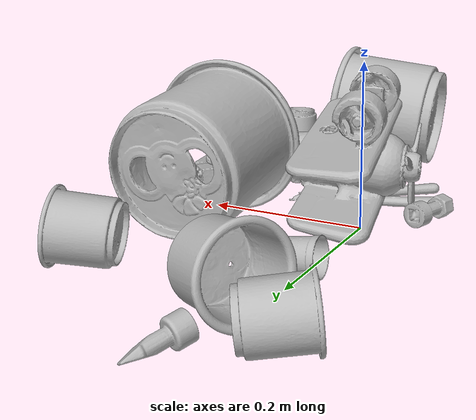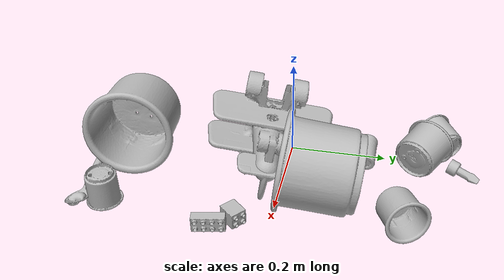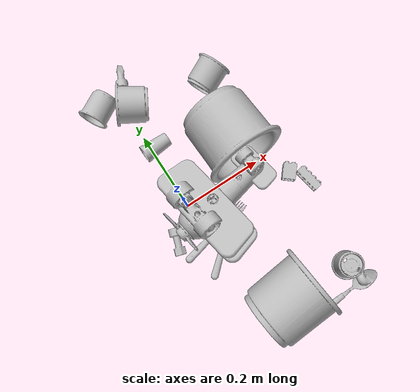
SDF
<sdf version="1.4">
  <world name="default">
    <light name="light1" type="point">
      <pose>0 0 1 0 0 0</pose>
      <diffuse>3 3 3 1</diffuse>
      <specular>3 3 3 1</specular>
    </light>
    <light name="light2" type="point">
      <pose>0 0.5 2 0 0 0</pose>
      <diffuse>1 1 1 1</diffuse>
      <specular>1 1 1 1</specular>
    </light>
    <light name="light3" type="point">
      <pose>0 0.5 2 0 0 0</pose>
      <diffuse>3 3 3 1</diffuse>
      <specular>3 3 3 1</specular>
    </light>
    <scene>
      <ambient>0.7 0.7 0.7</ambient>
    </scene>
    <model name="cup1">
      <link name="link_cup1">
        <collision name="default">
          <geometry>
            <mesh>
              <uri>model://d_cups/collision_meshes/collision.obj</uri>
              <scale>1.0 1.0 1.0</scale>
            </mesh>
          </geometry>
          <surface>
            <friction>
              <ode>
                <mu>0.5</mu>
                <mu2>0.5</mu2>
              </ode>
            </friction>
          <contact>
        <ode>
            <max_vel>0</max_vel>
            <min_depth>0.0001</min_depth>
            <kp>1e8</kp>
        </ode>
    </contact></surface>
        </collision>
        <visual name="default">
          <geometry>
            <mesh>
              <uri>model://d_cups/visual_meshes/visual.dae</uri>
              <scale>1.0 1.0 1.0</scale>
            </mesh>
          </geometry>
        </visual>
        <inertial>
          <mass>0.02583918906748295</mass>
          <pose>0.0008068039314821362 0.001911739120259881 -0.0022666507866233587 0.24011637128749466 -0.2471028358176743 0.5942765290496752</pose>
          <inertia>
            <ixx>2.1633481e-05</ixx>
            <iyy>2.1570875e-05</iyy>
            <izz>1.9581978e-05</izz>
            <ixy>0</ixy>
            <ixz>0</ixz>
            <iyz>0</iyz>
          </inertia>
        </inertial>
      </link>
      <pose>0.2417675256729126 -0.3281758725643158 0.03448902815580368 -3.1415861742204587 2.2500809973024046e-06 2.5448223139677935</pose>
    </model>
    <model name="silverware1">
      <link name="link_silverware1">
        <collision name="default">
          <geometry>
            <mesh>
              <uri>model://fork/collision_meshes/collision.obj</uri>
              <scale>1.0 1.0 1.0</scale>
            </mesh>
          </geometry>
          <surface>
            <friction>
              <ode>
                <mu>0.5</mu>
                <mu2>0.5</mu2>
              </ode>
            </friction>
          <contact>
        <ode>
            <max_vel>0</max_vel>
            <min_depth>0.0001</min_depth>
            <kp>1e8</kp>
        </ode>
    </contact></surface>
        </collision>
        <visual name="default">
          <geometry>
            <mesh>
              <uri>model://fork/visual_meshes/visual.dae</uri>
              <scale>1.0 1.0 1.0</scale>
            </mesh>
          </geometry>
        </visual>
        <inertial>
          <mass>0.019409121945500374</mass>
          <pose>-0.02957003004848957 0.00046588227269239724 0.0003218860365450382 -0.013551247621251511 -0.010977829980421018 0.014453895491116085</pose>
          <inertia>
            <ixx>6.8039935e-07</ixx>
            <iyy>5.0671635e-05</iyy>
            <izz>5.097597e-05</izz>
            <ixy>0</ixy>
            <ixz>0</ixz>
            <iyz>0</iyz>
          </inertia>
        </inertial>
      </link>
      <pose>0.021498795598745346 -0.09190983325242996 0.00522544514387846 -0.017119875541985557 0.05009347395846659 0.22518451736352757</pose>
    </model>
    <model name="cup2">
      <link name="link_cup2">
        <collision name="default">
          <geometry>
            <mesh>
              <uri>model://e_cups/collision_meshes/collision.obj</uri>
              <scale>1.0 1.0 1.0</scale>
            </mesh>
          </geometry>
          <surface>
            <friction>
              <ode>
                <mu>0.5</mu>
                <mu2>0.5</mu2>
              </ode>
            </friction>
          <contact>
        <ode>
            <max_vel>0</max_vel>
            <min_depth>0.0001</min_depth>
            <kp>1e8</kp>
        </ode>
    </contact></surface>
        </collision>
        <visual name="default">
          <geometry>
            <mesh>
              <uri>model://e_cups/visual_meshes/visual.dae</uri>
              <scale>1.0 1.0 1.0</scale>
            </mesh>
          </geometry>
        </visual>
        <inertial>
          <mass>0.044056184589862823</mass>
          <pose>0.0011355748865753412 0.0028797839768230915 -0.0038829699624329805 0.6952404811842238 0.0876797234541652 -0.5235249298074676</pose>
          <inertia>
            <ixx>3.8846523e-05</ixx>
            <iyy>4.060018e-05</iyy>
            <izz>3.714177e-05</izz>
            <ixy>0</ixy>
            <ixz>0</ixz>
            <iyz>0</iyz>
          </inertia>
        </inertial>
      </link>
      <pose>-0.050960052758455276 0.31315794587135315 0.03465081751346588 -1.4844726681223617 -0.03567743814750217 2.1026806966281173</pose>
    </model>
    <model name="silverware2">
      <link name="link_silverware2">
        <collision name="default">
          <geometry>
            <mesh>
              <uri>model://knife/collision_meshes/collision.obj</uri>
              <scale>1.0 1.0 1.0</scale>
            </mesh>
          </geometry>
          <surface>
            <friction>
              <ode>
                <mu>0.5</mu>
                <mu2>0.5</mu2>
              </ode>
            </friction>
          <contact>
        <ode>
            <max_vel>0</max_vel>
            <min_depth>0.0001</min_depth>
            <kp>1e8</kp>
        </ode>
    </contact></surface>
        </collision>
        <visual name="default">
          <geometry>
            <mesh>
              <uri>model://knife/visual_meshes/visual.dae</uri>
              <scale>1.0 1.0 1.0</scale>
            </mesh>
          </geometry>
        </visual>
        <inertial>
          <mass>0.018338654190301895</mass>
          <pose>-0.02378525212407112 0.00152751209679991 5.062017953605391e-05 0.07305878484845407 0.017248414361503102 -0.007409825003193847</pose>
          <inertia>
            <ixx>5.2052525e-07</ixx>
            <iyy>7.045415e-05</iyy>
            <izz>7.062178e-05</izz>
            <ixy>0</ixy>
            <ixz>0</ixz>
            <iyz>0</iyz>
          </inertia>
        </inertial>
      </link>
      <pose>0.034223444759845734 -0.10987654328346252 0.008699038065969944 -2.9845379365672793 -0.004599325942233853 0.7545492668247626</pose>
    </model>
    <model name="cup3">
      <link name="link_cup3">
        <collision name="default">
          <geometry>
            <mesh>
              <uri>model://g_cups/collision_meshes/collision.obj</uri>
              <scale>1.0 1.0 1.0</scale>
            </mesh>
          </geometry>
          <surface>
            <friction>
              <ode>
                <mu>0.5</mu>
                <mu2>0.5</mu2>
              </ode>
            </friction>
          <contact>
        <ode>
            <max_vel>0</max_vel>
            <min_depth>0.0001</min_depth>
            <kp>1e8</kp>
        </ode>
    </contact></surface>
        </collision>
        <visual name="default">
          <geometry>
            <mesh>
              <uri>model://g_cups/visual_meshes/visual.dae</uri>
              <scale>1.0 1.0 1.0</scale>
            </mesh>
          </geometry>
        </visual>
        <inertial>
          <mass>0.07798270881175995</mass>
          <pose>-0.0007946274126879871 -4.206407902529463e-05 -0.0021329382434487343 -0.21383467808934026 -0.31409923984197585 0.31123390815877217</pose>
          <inertia>
            <ixx>9.102333e-05</ixx>
            <iyy>9.0713715e-05</iyy>
            <izz>9.428446e-05</izz>
            <ixy>0</ixy>
            <ixz>0</ixz>
            <iyz>0</iyz>
          </inertia>
        </inertial>
      </link>
      <pose>0.21115770936012268 0.23772819340229034 0.04007524624466896 1.4559246777790869 0.08663383507075324 1.9921274326178484</pose>
    </model>
    <model name="silverware3">
      <link name="link_silverware3">
        <collision name="default">
          <geometry>
            <mesh>
              <uri>model://spoon/collision_meshes/collision.obj</uri>
              <scale>1.0 1.0 1.0</scale>
            </mesh>
          </geometry>
          <surface>
            <friction>
              <ode>
                <mu>0.5</mu>
                <mu2>0.5</mu2>
              </ode>
            </friction>
          <contact>
        <ode>
            <max_vel>0</max_vel>
            <min_depth>0.0001</min_depth>
            <kp>1e8</kp>
        </ode>
    </contact></surface>
        </collision>
        <visual name="default">
          <geometry>
            <mesh>
              <uri>model://spoon/visual_meshes/visual.dae</uri>
              <scale>1.0 1.0 1.0</scale>
            </mesh>
          </geometry>
        </visual>
        <inertial>
          <mass>0.03767607361078262</mass>
          <pose>-0.005526314023882151 -0.00160341733135283 -0.0007271650829352438 0.035216427360727776 -0.03906582911385382 0.006150613897789847</pose>
          <inertia>
            <ixx>2.095604e-06</ixx>
            <iyy>0.00014335623</iyy>
            <izz>0.00014438969</izz>
            <ixy>0</ixy>
            <ixz>0</ixz>
            <iyz>0</iyz>
          </inertia>
        </inertial>
      </link>
      <pose>0.19215857982635498 -0.38170409202575684 0.008547026664018631 0.05046516452024736 0.021876932960879218 0.07533312633549384</pose>
    </model>
    <model name="cup4">
      <link name="link_cup4">
        <collision name="default">
          <geometry>
            <mesh>
              <uri>model://i_cups/collision_meshes/collision.obj</uri>
              <scale>2.0 2.0 2.0</scale>
            </mesh>
          </geometry>
          <surface>
            <friction>
              <ode>
                <mu>0.5</mu>
                <mu2>0.5</mu2>
              </ode>
            </friction>
          <contact>
        <ode>
            <max_vel>0</max_vel>
            <min_depth>0.0001</min_depth>
            <kp>1e8</kp>
        </ode>
    </contact></surface>
        </collision>
        <visual name="default">
          <geometry>
            <mesh>
              <uri>model://i_cups/visual_meshes/visual.dae</uri>
              <scale>2.0 2.0 2.0</scale>
            </mesh>
          </geometry>
        </visual>
        <inertial>
          <mass>0.5538490414619446</mass>
          <pose>0.00022480632469523698 0.00033594807609915733 -0.0017158057307824492 -0.028982964625507153 -0.039873324075769 -0.3459146585522926</pose>
          <inertia>
            <ixx>0.003067248</ixx>
            <iyy>0.003094273</iyy>
            <izz>0.0034281453</izz>
            <ixy>0</ixy>
            <ixz>0</ixz>
            <iyz>0</iyz>
          </inertia>
        </inertial>
      </link>
      <pose>0.172040656208992 0.08216585963964462 0.08980707079172134 1.4230968796572983 0.5443911164583549 -0.026956629206316425</pose>
    </model>
    <model name="cup41">
      <link name="link_cup41">
        <collision name="default">
          <geometry>
            <mesh>
              <uri>model://cup_small/collision_meshes/collision.obj</uri>
              <scale>1.0 1.0 1.0</scale>
            </mesh>
          </geometry>
          <surface>
            <friction>
              <ode>
                <mu>0.5</mu>
                <mu2>0.5</mu2>
              </ode>
            </friction>
          <contact>
        <ode>
            <max_vel>0</max_vel>
            <min_depth>0.0001</min_depth>
            <kp>1e8</kp>
        </ode>
    </contact></surface>
        </collision>
        <visual name="default">
          <geometry>
            <mesh>
              <uri>model://cup_small/visual_meshes/visual.dae</uri>
              <scale>1.0 1.0 1.0</scale>
            </mesh>
          </geometry>
        </visual>
        <inertial>
          <mass>0.014494861476123333</mass>
          <pose>0.000104824714071583 -0.0003377838584128767 -0.010742826387286186 -0.01149312034772668 -0.015280288652376739 -0.5058210166411498</pose>
          <inertia>
            <ixx>8.534352e-06</ixx>
            <iyy>8.578376e-06</iyy>
            <izz>3.853286e-06</izz>
            <ixy>0</ixy>
            <ixz>0</ixz>
            <iyz>0</iyz>
          </inertia>
        </inertial>
      </link>
      <pose>0.013774078339338303 0.16112206876277924 0.01974663883447647 -1.426905895065747 0.8464957380421954 1.7417644239992576</pose>
    </model>
    <model name="cup5">
      <link name="link_cup5">
        <collision name="default">
          <geometry>
            <mesh>
              <uri>model://h_cups/collision_meshes/collision.obj</uri>
              <scale>2.0 2.0 2.0</scale>
            </mesh>
          </geometry>
          <surface>
            <friction>
              <ode>
                <mu>0.5</mu>
                <mu2>0.5</mu2>
              </ode>
            </friction>
          <contact>
        <ode>
            <max_vel>0</max_vel>
            <min_depth>0.0001</min_depth>
            <kp>1e8</kp>
        </ode>
    </contact></surface>
        </collision>
        <visual name="default">
          <geometry>
            <mesh>
              <uri>model://h_cups/visual_meshes/visual.dae</uri>
              <scale>2.0 2.0 2.0</scale>
            </mesh>
          </geometry>
        </visual>
        <inertial>
          <mass>0.5365790128707886</mass>
          <pose>-5.406028139987029e-05 0.00046037189895287156 -0.0036810787860304117 -0.02436222281077587 0.06545240855648493 0.12885003891433794</pose>
          <inertia>
            <ixx>0.002771868</ixx>
            <iyy>0.0027387904</iyy>
            <izz>0.0029069292</izz>
            <ixy>0</ixy>
            <ixz>0</ixz>
            <iyz>0</iyz>
          </inertia>
        </inertial>
      </link>
      <pose>0.07585998624563217 -0.3161846697330475 0.08414704352617264 1.2616378537903763 -1.2380671805613053 1.9678654168682168</pose>
    </model>
    <model name="cup51">
      <link name="link_cup51">
        <collision name="default">
          <geometry>
            <mesh>
              <uri>model://j_cups/collision_meshes/collision.obj</uri>
              <scale>1.0 1.0 1.0</scale>
            </mesh>
          </geometry>
          <surface>
            <friction>
              <ode>
                <mu>0.5</mu>
                <mu2>0.5</mu2>
              </ode>
            </friction>
          <contact>
        <ode>
            <max_vel>0</max_vel>
            <min_depth>0.0001</min_depth>
            <kp>1e8</kp>
        </ode>
    </contact></surface>
        </collision>
        <visual name="default">
          <geometry>
            <mesh>
              <uri>model://j_cups/visual_meshes/visual.dae</uri>
              <scale>1.0 1.0 1.0</scale>
            </mesh>
          </geometry>
        </visual>
        <inertial>
          <mass>0.08643309026956558</mass>
          <pose>0.0006164878141134977 0.000539897009730339 -0.0013479007175192237 0.030303582878034346 0.03757999590477698 0.4386876701083768</pose>
          <inertia>
            <ixx>0.00012691108</ixx>
            <iyy>0.00012823076</iyy>
            <izz>0.00014630218</izz>
            <ixy>0</ixy>
            <ixz>0</ixz>
            <iyz>0</iyz>
          </inertia>
        </inertial>
      </link>
      <pose>0.020387768745422363 0.2725943624973297 0.04726403206586838 -1.416169276541125 -0.6479598878434109 0.9694602862184953</pose>
    </model>
    <model name="toy1">
      <link name="link_toy1">
        <collision name="default">
          <geometry>
            <mesh>
              <uri>model://f_lego_duplo/collision_meshes/collision.obj</uri>
              <scale>1.0 1.0 1.0</scale>
            </mesh>
          </geometry>
          <surface>
            <friction>
              <ode>
                <mu>0.5</mu>
                <mu2>0.5</mu2>
              </ode>
            </friction>
          <contact>
        <ode>
            <max_vel>0</max_vel>
            <min_depth>0.0001</min_depth>
            <kp>1e8</kp>
        </ode>
    </contact></surface>
        </collision>
        <visual name="default">
          <geometry>
            <mesh>
              <uri>model://f_lego_duplo/visual_meshes/visual.dae</uri>
              <scale>1.0 1.0 1.0</scale>
            </mesh>
          </geometry>
        </visual>
        <inertial>
          <mass>0.03726755082607269</mass>
          <pose>2.3694148694630712e-05 0.00013393144763540477 0.0018837880343198776 0.029838475432906467 -0.014425202105620092 -0.6756589304715467</pose>
          <inertia>
            <ixx>7.874838e-06</ixx>
            <iyy>7.944995e-06</iyy>
            <izz>6.8356926e-06</izz>
            <ixy>0</ixy>
            <ixz>0</ixz>
            <iyz>0</iyz>
          </inertia>
        </inertial>
      </link>
      <pose>0.2514677047729492 -0.06530344486236572 0.016206666827201843 1.5789518944756238 0.00015413394331851391 2.4449649790921097</pose>
    </model>
    <model name="toy2">
      <link name="link_toy2">
        <collision name="default">
          <geometry>
            <mesh>
              <uri>model://a_toy_airplane/collision_meshes/collision.obj</uri>
              <scale>1.0 1.0 1.0</scale>
            </mesh>
          </geometry>
          <surface>
            <friction>
              <ode>
                <mu>0.5</mu>
                <mu2>0.5</mu2>
              </ode>
            </friction>
          <contact>
        <ode>
            <max_vel>0</max_vel>
            <min_depth>0.0001</min_depth>
            <kp>1e8</kp>
        </ode>
    </contact></surface>
        </collision>
        <visual name="default">
          <geometry>
            <mesh>
              <uri>model://a_toy_airplane/visual_meshes/visual.dae</uri>
              <scale>1.0 1.0 1.0</scale>
            </mesh>
          </geometry>
        </visual>
        <inertial>
          <mass>2.8230273723602295</mass>
          <pose>0.025165094062685966 -0.003707324154675007 -0.0011962448479607701 -0.012016973205606891 -0.14663498091084715 0.004149146833454428</pose>
          <inertia>
            <ixx>0.010251767</ixx>
            <iyy>0.014938904</iyy>
            <izz>0.017491622</izz>
            <ixy>0</ixy>
            <ixz>0</ixz>
            <iyz>0</iyz>
          </inertia>
        </inertial>
      </link>
      <pose>0.07554392516613007 -0.03160952404141426 0.07371118664741516 -2.9532597781811245 -0.14906592374208466 -3.000500876421084</pose>
    </model>
    <model name="toy3">
      <link name="link_toy3">
        <collision name="default">
          <geometry>
            <mesh>
              <uri>model://e_toy_airplane/collision_meshes/collision.obj</uri>
              <scale>1.0 1.0 1.0</scale>
            </mesh>
          </geometry>
          <surface>
            <friction>
              <ode>
                <mu>0.5</mu>
                <mu2>0.5</mu2>
              </ode>
            </friction>
          <contact>
        <ode>
            <max_vel>0</max_vel>
            <min_depth>0.0001</min_depth>
            <kp>1e8</kp>
        </ode>
    </contact></surface>
        </collision>
        <visual name="default">
          <geometry>
            <mesh>
              <uri>model://e_toy_airplane/visual_meshes/visual.dae</uri>
              <scale>1.0 1.0 1.0</scale>
            </mesh>
          </geometry>
        </visual>
        <inertial>
          <mass>0.018226178362965584</mass>
          <pose>0.00011740501213353127 -2.2482903659692965e-05 -0.011187204159796238 0.005518473613481416 0.009228340672948143 0.1504115676354622</pose>
          <inertia>
            <ixx>5.5628384e-06</ixx>
            <iyy>5.505933e-06</iyy>
            <izz>1.6718515e-06</izz>
            <ixy>0</ixy>
            <ixz>0</ixz>
            <iyz>0</iyz>
          </inertia>
        </inertial>
      </link>
      <pose>0.034708812832832336 0.36042019724845886 0.011941634118556976 2.0452914718000796 1.1309454669361 -3.116342132652663</pose>
    </model>
    <model name="toy4">
      <link name="link_toy4">
        <collision name="default">
          <geometry>
            <mesh>
              <uri>model://c_toy_airplane/collision_meshes/collision.obj</uri>
              <scale>1.0 1.0 1.0</scale>
            </mesh>
          </geometry>
          <surface>
            <friction>
              <ode>
                <mu>0.5</mu>
                <mu2>0.5</mu2>
              </ode>
            </friction>
          <contact>
        <ode>
            <max_vel>0</max_vel>
            <min_depth>0.0001</min_depth>
            <kp>1e8</kp>
        </ode>
    </contact></surface>
        </collision>
        <visual name="default">
          <geometry>
            <mesh>
              <uri>model://c_toy_airplane/visual_meshes/visual.dae</uri>
              <scale>1.0 1.0 1.0</scale>
            </mesh>
          </geometry>
        </visual>
        <inertial>
          <mass>0.025432955473661423</mass>
          <pose>-0.00023024249821901321 -4.429159048413567e-07 -0.006080531049519777 -0.006192114712999555 -0.016797950833505656 0.7654545807195076</pose>
          <inertia>
            <ixx>1.1678292e-05</ixx>
            <iyy>1.1645335e-05</iyy>
            <izz>2.7418316e-06</izz>
            <ixy>0</ixy>
            <ixz>0</ixz>
            <iyz>0</iyz>
          </inertia>
        </inertial>
      </link>
      <pose>-0.06649618595838547 -0.06128820776939392 0.015065078623592854 1.5811113085735844 -0.5804266729974437 -0.3141342431275893</pose>
    </model>
    <model name="toy5">
      <link name="link_toy5">
        <collision name="default">
          <geometry>
            <mesh>
              <uri>model://c_lego_duplo/collision_meshes/collision.obj</uri>
              <scale>1.0 1.0 1.0</scale>
            </mesh>
          </geometry>
          <surface>
            <friction>
              <ode>
                <mu>0.5</mu>
                <mu2>0.5</mu2>
              </ode>
            </friction>
          <contact>
        <ode>
            <max_vel>0</max_vel>
            <min_depth>0.0001</min_depth>
            <kp>1e8</kp>
        </ode>
    </contact></surface>
        </collision>
        <visual name="default">
          <geometry>
            <mesh>
              <uri>model://c_lego_duplo/visual_meshes/visual.dae</uri>
              <scale>1.0 1.0 1.0</scale>
            </mesh>
          </geometry>
        </visual>
        <inertial>
          <mass>0.03308485820889473</mass>
          <pose>0.00031645988929085433 0.00019464598153717816 0.0010453154100105166 -0.011520788894510418 0.005900092683279709 0.031100331745055027</pose>
          <inertia>
            <ixx>1.2731672e-05</ixx>
            <iyy>4.066954e-06</iyy>
            <izz>1.4878268e-05</izz>
            <ixy>0</ixy>
            <ixz>0</ixz>
            <iyz>0</iyz>
          </inertia>
        </inertial>
      </link>
      <pose>0.2822009027004242 -0.10555014759302139 0.01625164784491062 2.076594734995523 -1.544734549994011 1.251899984505182</pose>
    </model>
  <physics type="ode">
      <max_contacts>50</max_contacts>
      <ode>
        <solver>
          <type>quick</type>
          <iters>75</iters>
        </solver>
        <constraints>
          <contact_max_correcting_vel>0</contact_max_correcting_vel>
          <contact_surface_layer>0</contact_surface_layer>
        </constraints>
      </ode>
    </physics></world>
</sdf>
